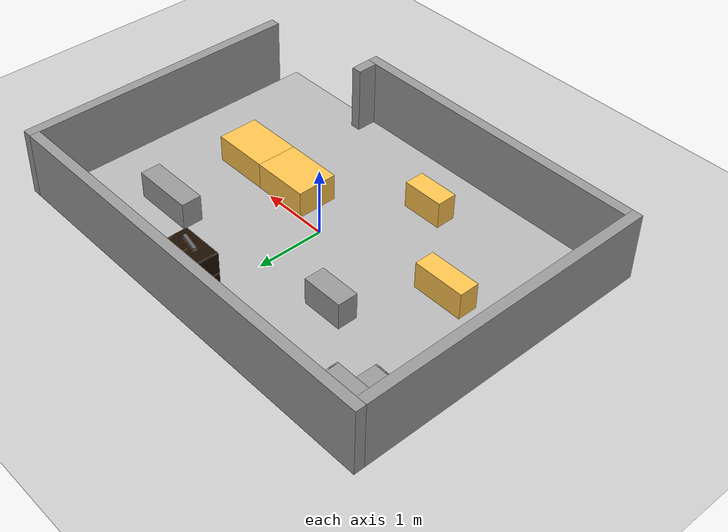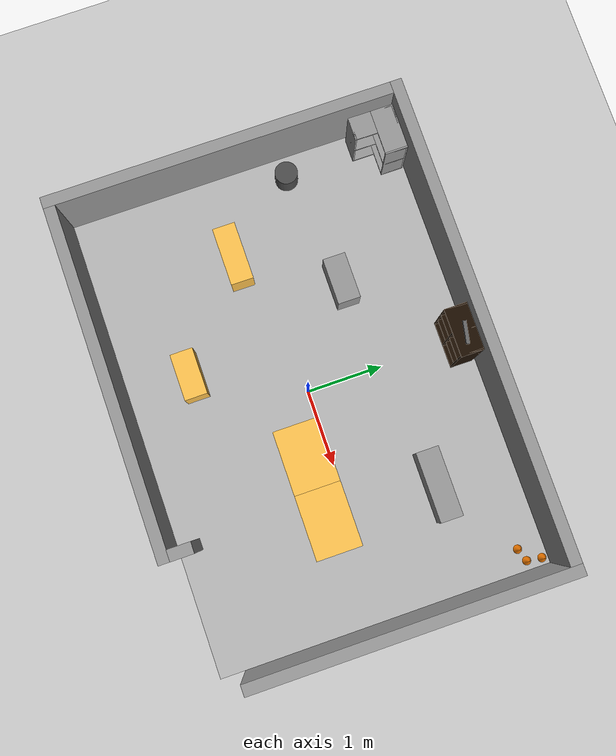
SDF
<sdf version="1.8">
 <world name="my_world">
  <physics name="1ms" type="ignored">
   <max_step_size>0.001</max_step_size>
   <real_time_factor>1.0</real_time_factor>
  </physics>
  <plugin filename="gz-sim-physics-system" name="gz::sim::systems::Physics"/>
  <plugin filename="gz-sim-user-commands-system" name="gz::sim::systems::UserCommands"/>
  <plugin filename="gz-sim-scene-broadcaster-system" name="gz::sim::systems::SceneBroadcaster"/>
  <plugin filename="gz-sim-sensors-system" name="gz::sim::systems::Sensors">
   <render_engine>ogre2</render_engine>
  </plugin>
  <plugin filename="gz-sim-imu-system" name="gz::sim::systems::Imu"/>
  <plugin filename="gz-sim-contact-system" name="gz::sim::systems::Contact"/>
  <scene><shadows>true</shadows></scene>
  <light type="directional" name="sun">
   <pose>0 0 10 0 0 0</pose>
   <diffuse>0.8 0.8 0.8 1</diffuse>
   <specular>0.1 0.1 0.1 1</specular>
   <attenuation>
    <range>1000</range>
    <constant>0.9</constant>
    <linear>0.01</linear>
    <quadratic>0.001</quadratic>
   </attenuation>
   <direction>-0.5 0.5 -1</direction>
  </light>
  <model name="ground_plane">
   <static>true</static>
   <link name="link">
    <collision name="collision">
     <geometry><plane><normal>0 0 1</normal><size>50 50</size></plane></geometry>
    </collision>
    <visual name="visual">
     <geometry><plane><normal>0 0 1</normal><size>50 50</size></plane></geometry>
     <material><ambient>0.8 0.8 0.8 1</ambient><diffuse>0.8 0.8 0.8 1</diffuse></material>
    </visual>
   </link>
  </model>
  <include><uri>model://Workshop</uri></include>
  <include><pose>-1.936710 -0.343286 0.013 0 0 -1.57</pose><uri>model://Box_15x30</uri></include>
  <include><name>Box_33x15_1</name><pose>1.636 -0.3 0.013 0 0 0</pose><uri>model://Box_33x15</uri></include>
  <include><name>Box_33x15_2</name><pose>0.8 -0.3 0.013 0 0 0</pose><uri>model://Box_33x15</uri></include>
  <include><pose>1.658951 1.141109 0.013 0 0 0</pose><uri>model://Box_36x15W</uri></include>
  <include><pose>0 1.986729 0.013002 0 0 0</pose><uri>model://6_Cube_StorageE</uri></include>
  <include><pose>-0.653226 -1.356719 0.013 0 0 0</pose><uri>model://Box_24x15M</uri></include>
  <include><pose>-1.184366 0.857670 0.013 0 0 0</pose><uri>model://Box_24x15W</uri></include>
  <include>
   <pose>-2.710050 1.858030 0.013 0 0 -1.574973</pose>
   <uri>model://Wall_Cabinet_Coin_24x30W</uri>
  </include>
  <include><pose>0.0443 1.991597 0.947936 0.194664 1.558386 0.000047</pose><uri>model://pole</uri></include>
  <model name="trash_can">
   <static>true</static>
   <pose>-2.756142 0.652103 0.15 0 0 0</pose>
   <link name="link">
    <collision name="collision">
     <geometry><cylinder><radius>0.15</radius><length>0.3</length></cylinder></geometry>
    </collision>
    <visual name="visual">
     <geometry><cylinder><radius>0.15</radius><length>0.3</length></cylinder></geometry>
     <material><ambient>0.3 0.3 0.3 1</ambient><diffuse>0.3 0.3 0.3 1</diffuse></material>
    </visual>
   </link>
  </model>
  <model name="cone_1">
   <static>true</static>
   <pose>2.756128 1.844506 0.1 0 0 0</pose>
   <link name="link">
    <collision name="collision">
     <geometry><cone><radius>0.06</radius><length>0.2</length></cone></geometry>
    </collision>
    <visual name="visual">
     <geometry><cone><radius>0.06</radius><length>0.2</length></cone></geometry>
     <material><ambient>1.0 0.5 0.0 1</ambient><diffuse>1.0 0.5 0.0 1</diffuse></material>
    </visual>
    <inertial><mass value="0.5"/></inertial>
   </link>
  </model>
  <model name="cone_2">
   <static>true</static>
   <pose>2.95466 2.098111 0.1 0 0 0</pose>
   <link name="link">
    <collision name="collision">
     <geometry><cone><radius>0.06</radius><length>0.2</length></cone></geometry>
    </collision>
    <visual name="visual">
     <geometry><cone><radius>0.06</radius><length>0.2</length></cone></geometry>
     <material><ambient>1.0 0.5 0.0 1</ambient><diffuse>1.0 0.5 0.0 1</diffuse></material>
    </visual>
    <inertial><mass value="0.5"/></inertial>
   </link>
  </model>
  <model name="cone_3">
   <static>true</static>
   <pose>2.927490 1.903970 0.1 0 0 0</pose>
   <link name="link">
    <collision name="collision">
     <geometry><cone><radius>0.06</radius><length>0.2</length></cone></geometry>
    </collision>
    <visual name="visual">
     <geometry><cone><radius>0.06</radius><length>0.2</length></cone></geometry>
     <material><ambient>1.0 0.5 0.0 1</ambient><diffuse>1.0 0.5 0.0 1</diffuse></material>
    </visual>
    <inertial><mass value="0.5"/></inertial>
   </link>
  </model>
 </world>
</sdf>
